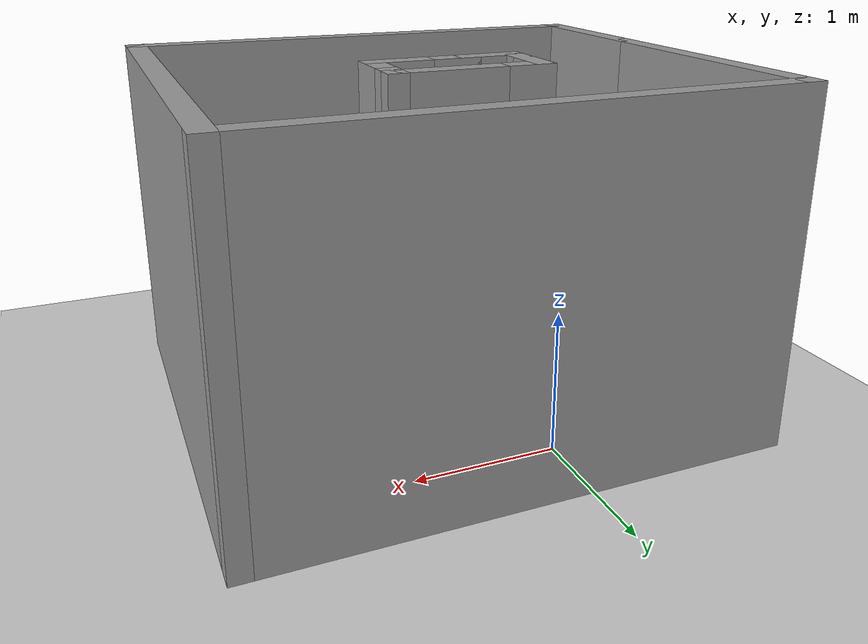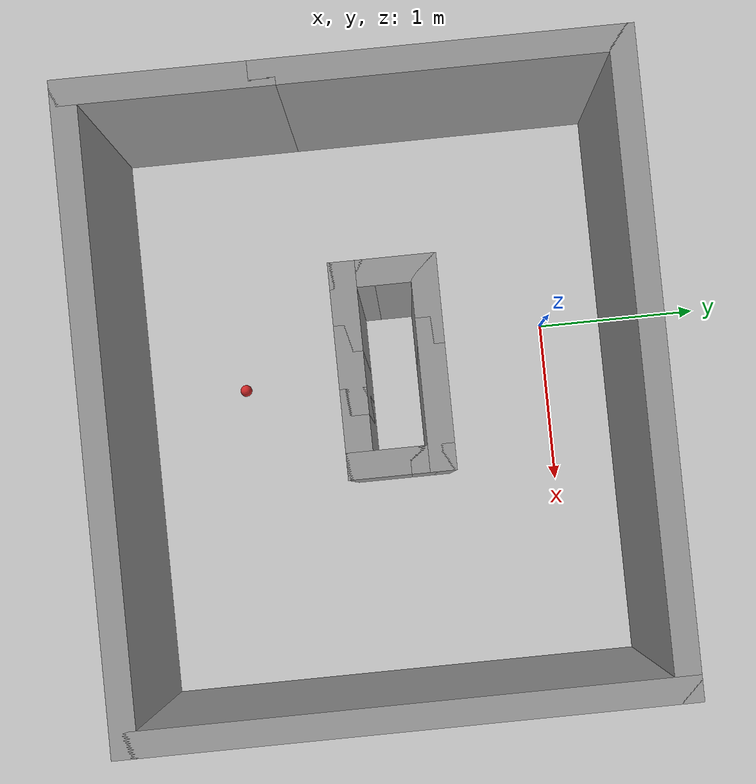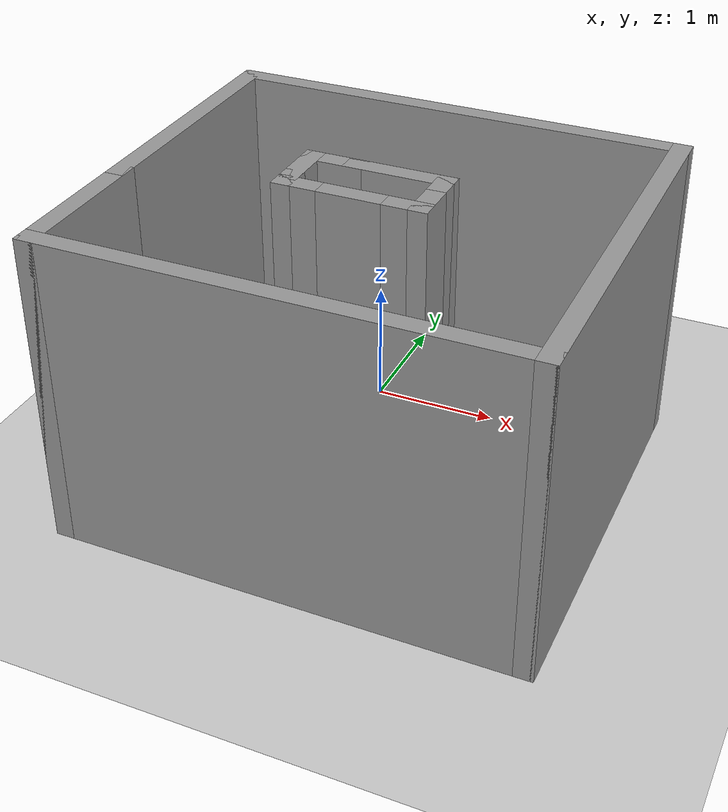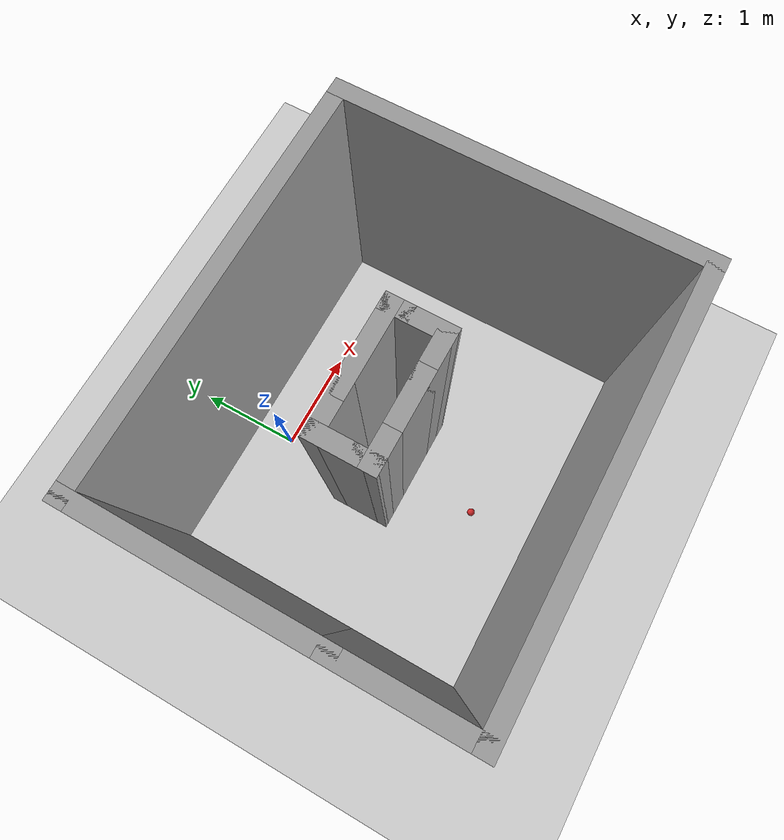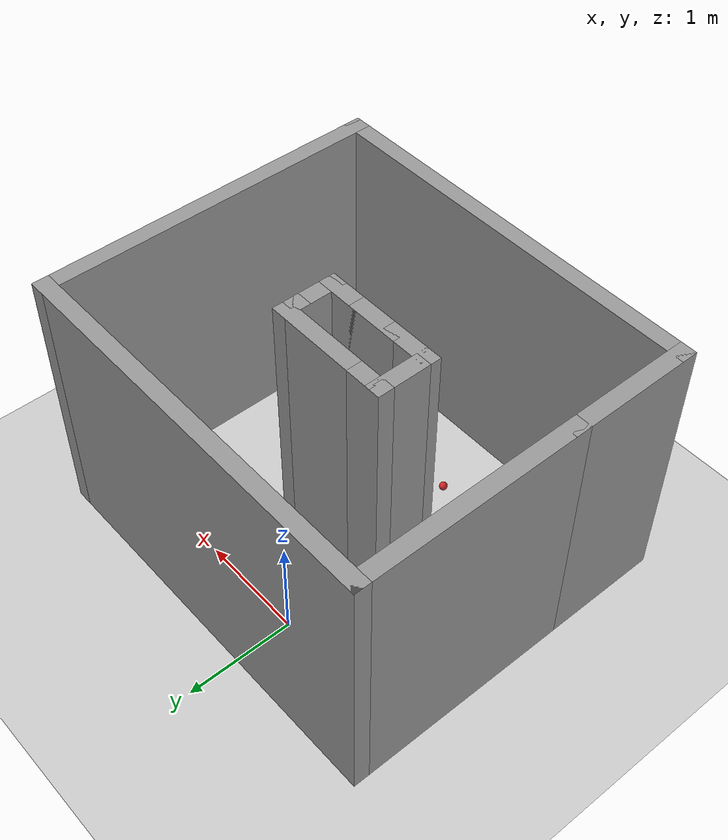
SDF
<sdf version="1.6">
 <world name="default">
  <light name="sun" type="directional">
   <pose>0 0 10 0 -0 0</pose>
   <diffuse>0.8 0.8 0.8 1</diffuse>
   <specular>0.2 0.2 0.2 1</specular>
   <attenuation>
    <range>1000</range>
    <constant>0.9</constant>
    <linear>0.01</linear>
    <quadratic>0.001</quadratic>
   </attenuation>
   <direction>-0.5 0.1 -0.9</direction>
  </light>
  <model name="ground_plane">
   <static>1</static>
   <link name="link">
    <collision name="collision">
     <geometry><plane><normal>0 0 1</normal><size>100 100</size></plane></geometry>
     <surface>
      <contact><collide_bitmask>65535</collide_bitmask></contact>
      <friction><ode><mu>100</mu><mu2>50</mu2></ode></friction>
     </surface>
    </collision>
    <visual name="visual">
     <cast_shadows>0</cast_shadows>
     <geometry><plane><normal>0 0 1</normal><size>100 100</size></plane></geometry>
     <material>
      <script><uri>file://media/materials/scripts/gazebo.material</uri><name>Gazebo/Grey</name></script>
     </material>
    </visual>
   </link>
  </model>
  <gravity>0 0 -9.8</gravity>
  <magnetic_field>6e-06 2.3e-05 -4.2e-05</magnetic_field>
  <atmosphere type="adiabatic"/>
  <physics name="default_physics" default="0" type="ode">
   <max_step_size>0.001</max_step_size>
   <real_time_factor>1</real_time_factor>
   <real_time_update_rate>1000</real_time_update_rate>
  </physics>
  <scene><ambient>0.4 0.4 0.4 1</ambient><background>0.7 0.7 0.7 1</background><shadows>1</shadows></scene>
  <audio><device>default</device></audio>
  <spherical_coordinates>
   <surface_model>EARTH_WGS84</surface_model>
   <latitude_deg>0</latitude_deg>
   <longitude_deg>0</longitude_deg>
   <elevation>0</elevation>
   <heading_deg>0</heading_deg>
  </spherical_coordinates>
  <model name="maze2">
   <pose>0.42 -1.09 0 0 -0 0</pose>
   <link name="Wall_12">
    <collision name="Wall_12_Collision">
     <geometry><box><size>0.5 0.15 2.5</size></box></geometry>
     <pose>0 0 1.25 0 -0 0</pose>
    </collision>
    <visual name="Wall_12_Visual">
     <pose>0 0 1.25 0 -0 0</pose>
     <geometry><box><size>0.5 0.15 2.5</size></box></geometry>
     <material>
      <script><uri>file://media/materials/scripts/gazebo.material</uri><name>Gazebo/Grey</name></script>
      <ambient>1 1 1 1</ambient>
     </material>
     <meta><layer>0</layer></meta>
    </visual>
    <pose>-0.117776 -0.115278 0 0 -0 0</pose>
   </link>
   <link name="Wall_13">
    <collision name="Wall_13_Collision">
     <geometry><box><size>0.5 0.15 2.5</size></box></geometry>
     <pose>0 0 1.25 0 -0 0</pose>
    </collision>
    <visual name="Wall_13_Visual">
     <pose>0 0 1.25 0 -0 0</pose>
     <geometry><box><size>0.5 0.15 2.5</size></box></geometry>
     <material>
      <script><uri>file://media/materials/scripts/gazebo.material</uri><name>Gazebo/Grey</name></script>
      <ambient>1 1 1 1</ambient>
     </material>
     <meta><layer>0</layer></meta>
    </visual>
    <pose>0.232224 -0.115278 0 0 -0 0</pose>
   </link>
   <link name="Wall_14">
    <collision name="Wall_14_Collision">
     <geometry><box><size>0.5 0.15 2.5</size></box></geometry>
     <pose>0 0 1.25 0 -0 0</pose>
    </collision>
    <visual name="Wall_14_Visual">
     <pose>0 0 1.25 0 -0 0</pose>
     <geometry><box><size>0.5 0.15 2.5</size></box></geometry>
     <material>
      <script><uri>file://media/materials/scripts/gazebo.material</uri><name>Gazebo/Grey</name></script>
      <ambient>1 1 1 1</ambient>
     </material>
     <meta><layer>0</layer></meta>
    </visual>
    <pose>0.407224 0.059722 0 0 -0 1.5708</pose>
   </link>
   <link name="Wall_15">
    <collision name="Wall_15_Collision">
     <geometry><box><size>0.25 0.15 2.5</size></box></geometry>
     <pose>0 0 1.25 0 -0 0</pose>
    </collision>
    <visual name="Wall_15_Visual">
     <pose>0 0 1.25 0 -0 0</pose>
     <geometry><box><size>0.25 0.15 2.5</size></box></geometry>
     <material>
      <script><uri>file://media/materials/scripts/gazebo.material</uri><name>Gazebo/Grey</name></script>
      <ambient>1 1 1 1</ambient>
     </material>
     <meta><layer>0</layer></meta>
    </visual>
    <pose>0.407224 0.284722 0 0 -0 1.5708</pose>
   </link>
   <link name="Wall_16">
    <collision name="Wall_16_Collision">
     <geometry><box><size>0.85 0.15 2.5</size></box></geometry>
     <pose>0 0 1.25 0 -0 0</pose>
    </collision>
    <visual name="Wall_16_Visual">
     <pose>0 0 1.25 0 -0 0</pose>
     <geometry><box><size>0.85 0.15 2.5</size></box></geometry>
     <material>
      <script><uri>file://media/materials/scripts/gazebo.material</uri><name>Gazebo/Grey</name></script>
      <ambient>1 1 1 1</ambient>
     </material>
     <meta><layer>0</layer></meta>
    </visual>
    <pose>0.057224 0.334722 0 0 -0 3.14159</pose>
   </link>
   <link name="Wall_22">
    <collision name="Wall_22_Collision">
     <geometry><box><size>0.5 0.15 2.5</size></box></geometry>
     <pose>0 0 1.25 0 -0 0</pose>
    </collision>
    <visual name="Wall_22_Visual">
     <pose>0 0 1.25 0 -0 0</pose>
     <geometry><box><size>0.5 0.15 2.5</size></box></geometry>
     <material>
      <script><uri>file://media/materials/scripts/gazebo.material</uri><name>Gazebo/Grey</name></script>
      <ambient>1 1 1 1</ambient>
     </material>
     <meta><layer>0</layer></meta>
    </visual>
    <pose>-0.467776 0.334722 0 0 -0 3.14159</pose>
   </link>
   <link name="Wall_23">
    <collision name="Wall_23_Collision">
     <geometry><box><size>0.5 0.15 2.5</size></box></geometry>
     <pose>0 0 1.25 0 -0 0</pose>
    </collision>
    <visual name="Wall_23_Visual">
     <pose>0 0 1.25 0 -0 0</pose>
     <geometry><box><size>0.5 0.15 2.5</size></box></geometry>
     <material>
      <script><uri>file://media/materials/scripts/gazebo.material</uri><name>Gazebo/Grey</name></script>
      <ambient>1 1 1 1</ambient>
     </material>
     <meta><layer>0</layer></meta>
    </visual>
    <pose>-0.642776 0.159722 0 0 -0 -1.5708</pose>
   </link>
   <link name="Wall_24">
    <collision name="Wall_24_Collision">
     <geometry><box><size>0.25 0.15 2.5</size></box></geometry>
     <pose>0 0 1.25 0 -0 0</pose>
    </collision>
    <visual name="Wall_24_Visual">
     <pose>0 0 1.25 0 -0 0</pose>
     <geometry><box><size>0.25 0.15 2.5</size></box></geometry>
     <material>
      <script><uri>file://media/materials/scripts/gazebo.material</uri><name>Gazebo/Grey</name></script>
      <ambient>1 1 1 1</ambient>
     </material>
     <meta><layer>0</layer></meta>
    </visual>
    <pose>-0.642776 -0.065278 0 0 -0 -1.5708</pose>
   </link>
   <link name="Wall_25">
    <collision name="Wall_25_Collision">
     <geometry><box><size>0.5 0.15 2.5</size></box></geometry>
     <pose>0 0 1.25 0 -0 0</pose>
    </collision>
    <visual name="Wall_25_Visual">
     <pose>0 0 1.25 0 -0 0</pose>
     <geometry><box><size>0.5 0.15 2.5</size></box></geometry>
     <material>
      <script><uri>file://media/materials/scripts/gazebo.material</uri><name>Gazebo/Grey</name></script>
      <ambient>1 1 1 1</ambient>
     </material>
     <meta><layer>0</layer></meta>
    </visual>
    <pose>-0.467776 -0.115278 0 0 -0 0</pose>
   </link>
   <link name="Wall_3">
    <collision name="Wall_3_Collision">
     <geometry><box><size>1.25 0.15 2.5</size></box></geometry>
     <pose>0 0 1.25 0 -0 0</pose>
    </collision>
    <visual name="Wall_3_Visual">
     <pose>0 0 1.25 0 -0 0</pose>
     <geometry><box><size>1.25 0.15 2.5</size></box></geometry>
     <material>
      <script><uri>file://media/materials/scripts/gazebo.material</uri><name>Gazebo/Grey</name></script>
      <ambient>1 1 1 1</ambient>
     </material>
     <meta><layer>0</layer></meta>
    </visual>
    <pose>-1.8 -1 0 0 -0 -1.5708</pose>
   </link>
   <link name="Wall_4">
    <collision name="Wall_4_Collision">
     <geometry><box><size>3.75 0.15 2.5</size></box></geometry>
     <pose>0 0 1.25 0 -0 0</pose>
    </collision>
    <visual name="Wall_4_Visual">
     <pose>0 0 1.25 0 -0 0</pose>
     <geometry><box><size>3.75 0.15 2.5</size></box></geometry>
     <material>
      <script><uri>file://media/materials/scripts/gazebo.material</uri><name>Gazebo/Grey</name></script>
      <ambient>1 1 1 1</ambient>
     </material>
     <meta><layer>0</layer></meta>
    </visual>
    <pose>-0 -1.55 0 0 -0 0</pose>
   </link>
   <link name="Wall_5">
    <collision name="Wall_5_Collision">
     <geometry><box><size>3.25 0.15 2.5</size></box></geometry>
     <pose>0 0 1.25 0 -0 0</pose>
    </collision>
    <visual name="Wall_5_Visual">
     <pose>0 0 1.25 0 -0 0</pose>
     <geometry><box><size>3.25 0.15 2.5</size></box></geometry>
     <material>
      <script><uri>file://media/materials/scripts/gazebo.material</uri><name>Gazebo/Grey</name></script>
      <ambient>1 1 1 1</ambient>
     </material>
     <meta><layer>0</layer></meta>
    </visual>
    <pose>1.8 -0 0 0 -0 1.5708</pose>
   </link>
   <link name="Wall_6">
    <collision name="Wall_6_Collision">
     <geometry><box><size>3.75 0.15 2.5</size></box></geometry>
     <pose>0 0 1.25 0 -0 0</pose>
    </collision>
    <visual name="Wall_6_Visual">
     <pose>0 0 1.25 0 -0 0</pose>
     <geometry><box><size>3.75 0.15 2.5</size></box></geometry>
     <material>
      <script><uri>file://media/materials/scripts/gazebo.material</uri><name>Gazebo/Grey</name></script>
      <ambient>1 1 1 1</ambient>
     </material>
     <meta><layer>0</layer></meta>
    </visual>
    <pose>-0 1.55 0 0 -0 3.14159</pose>
   </link>
   <link name="Wall_7">
    <collision name="Wall_7_Collision">
     <geometry><box><size>2.15 0.15 2.5</size></box></geometry>
     <pose>0 0 1.25 0 -0 0</pose>
    </collision>
    <visual name="Wall_7_Visual">
     <pose>0 0 1.25 0 -0 0</pose>
     <geometry><box><size>2.15 0.15 2.5</size></box></geometry>
     <material>
      <script><uri>file://media/materials/scripts/gazebo.material</uri><name>Gazebo/Grey</name></script>
      <ambient>1 1 1 1</ambient>
     </material>
     <meta><layer>0</layer></meta>
    </visual>
    <pose>-1.8 0.55 0 0 -0 -1.5708</pose>
   </link>
   <static>1</static>
  </model>
  <model name="cricket_ball">
   <link name="link">
    <pose>0 0 0.0375 0 -0 0</pose>
    <inertial>
     <mass>0.1467</mass>
     <inertia>
      <ixx>8.25187e-05</ixx>
      <ixy>0</ixy>
      <ixz>0</ixz>
      <iyy>8.25187e-05</iyy>
      <iyz>0</iyz>
      <izz>8.25187e-05</izz>
     </inertia>
    </inertial>
    <collision name="collision">
     <geometry><sphere><radius>0.0375</radius></sphere></geometry>
     <surface>
      <contact>
       <poissons_ratio>0.347</poissons_ratio>
       <elastic_modulus>8.8e+09</elastic_modulus>
       <ode><kp>100000</kp><kd>100</kd><max_vel>100</max_vel><min_depth>0.001</min_depth></ode>
      </contact>
      <friction>
       <torsional>
        <coefficient>1</coefficient>
        <use_patch_radius>0</use_patch_radius>
        <surface_radius>0.01</surface_radius>
       </torsional>
      </friction>
     </surface>
    </collision>
    <visual name="visual">
     <geometry><sphere><radius>0.0375</radius></sphere></geometry>
     <material>
      <script><uri>file://media/materials/scripts/gazebo.material</uri><name>Gazebo/Red</name></script>
     </material>
    </visual>
    <velocity_decay><linear>0</linear><angular>0.005</angular></velocity_decay>
   </link>
   <pose>0.234 -1.954 -0.001014 0 -0 0</pose>
  </model>
 </world>
</sdf>
